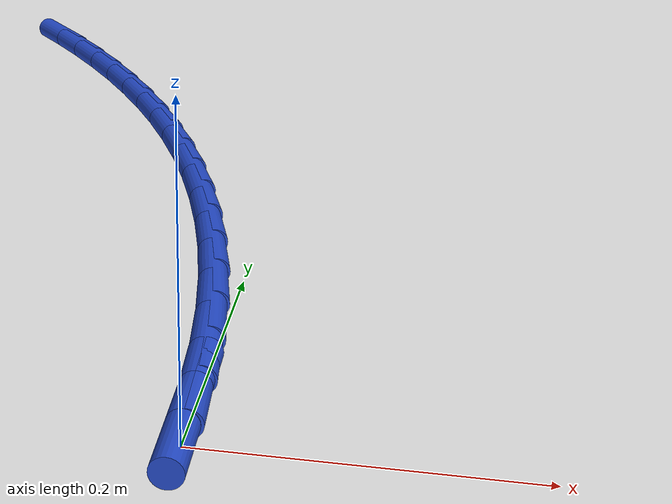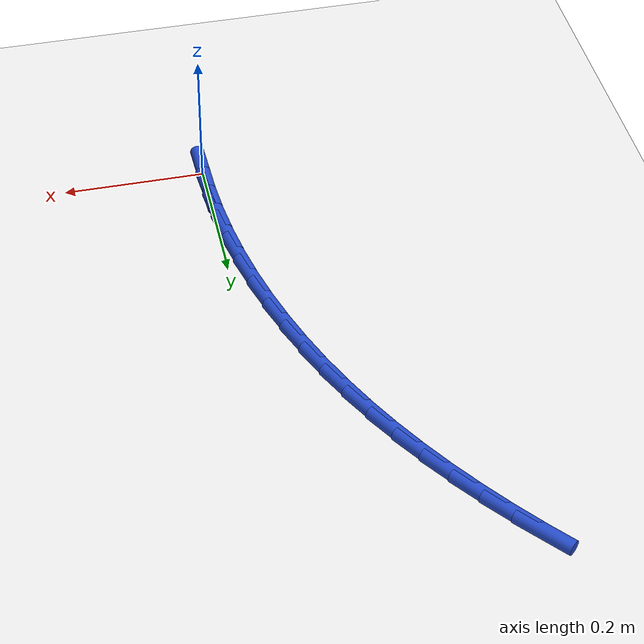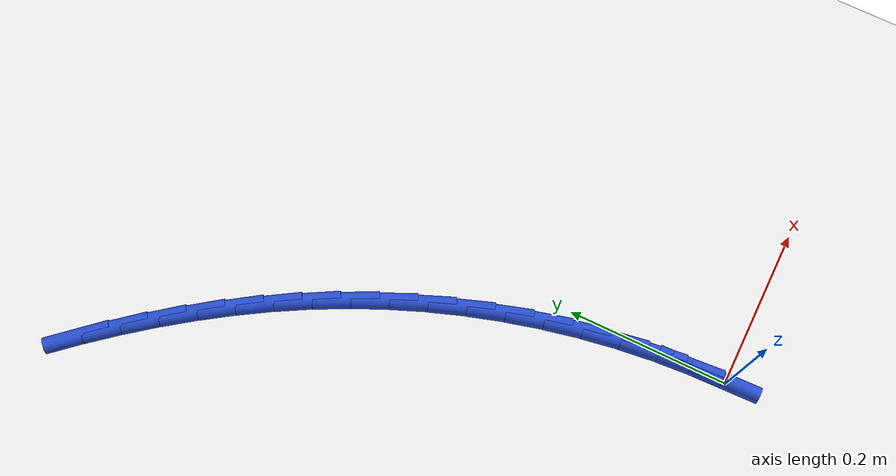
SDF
<sdf version="1.6">
 <world name="default">
  <model name="ground_plane">
   <static>1</static>
   <link name="link">
    <collision name="collision">
     <geometry><plane><normal>0 0 1</normal><size>100 100</size></plane></geometry>
     <surface><friction><ode><mu>100</mu><mu2>50</mu2></ode></friction></surface>
    </collision>
    <visual name="visual">
     <cast_shadows>0</cast_shadows>
     <geometry><plane><normal>0 0 1</normal><size>100 100</size></plane></geometry>
     <material>
      <script><uri>file://media/materials/scripts/gazebo.material</uri><name>Gazebo/WhiteGlow</name></script>
     </material>
    </visual>
   </link>
  </model>
  <model name="line">
   <link name="link_1">
    <pose>-0.0012918215380092201 0.04641076852433082 0.01 0 1.57 -1.4957556351680719</pose>
    <collision name="collision">
     <geometry><cylinder><radius>0.01</radius><length>0.08</length></cylinder></geometry>
    </collision>
    <visual name="visual">
     <material>
      <script><name>Gazebo/Blue</name><uri>file://media/materials/scripts/gazebo.material</uri></script>
     </material>
     <geometry><cylinder><radius>0.01</radius><length>0.08</length></cylinder></geometry>
    </visual>
   </link>
   <link name="link_2">
    <pose>-0.004776711012445879 0.09276356301618625 0.01 0 1.57 -1.449606159220448</pose>
    <collision name="collision">
     <geometry><cylinder><radius>0.01</radius><length>0.08</length></cylinder></geometry>
    </collision>
    <visual name="visual">
     <material>
      <script><name>Gazebo/Blue</name><uri>file://media/materials/scripts/gazebo.material</uri></script>
     </material>
     <geometry><cylinder><radius>0.01</radius><length>0.08</length></cylinder></geometry>
    </visual>
   </link>
   <link name="link_3">
    <pose>-0.010400524770756297 0.13894102485700363 0.01 0 1.57 -1.404351630841077</pose>
    <collision name="collision">
     <geometry><cylinder><radius>0.01</radius><length>0.08</length></cylinder></geometry>
    </collision>
    <visual name="visual">
     <material>
      <script><name>Gazebo/Blue</name><uri>file://media/materials/scripts/gazebo.material</uri></script>
     </material>
     <geometry><cylinder><radius>0.01</radius><length>0.08</length></cylinder></geometry>
    </visual>
   </link>
   <link name="link_4">
    <pose>-0.018109119160386777 0.18482579542822042 0.01 0 1.57 -1.3598155134194914</pose>
    <collision name="collision">
     <geometry><cylinder><radius>0.01</radius><length>0.08</length></cylinder></geometry>
    </collision>
    <visual name="visual">
     <material>
      <script><name>Gazebo/Blue</name><uri>file://media/materials/scripts/gazebo.material</uri></script>
     </material>
     <geometry><cylinder><radius>0.01</radius><length>0.08</length></cylinder></geometry>
    </visual>
   </link>
   <link name="link_5">
    <pose>-0.0278483505287836 0.23030051611127378 0.01 0 1.57 -1.3158151938457348</pose>
    <collision name="collision">
     <geometry><cylinder><radius>0.01</radius><length>0.08</length></cylinder></geometry>
    </collision>
    <visual name="visual">
     <material>
      <script><name>Gazebo/Blue</name><uri>file://media/materials/scripts/gazebo.material</uri></script>
     </material>
     <geometry><cylinder><radius>0.01</radius><length>0.08</length></cylinder></geometry>
    </visual>
   </link>
   <link name="link_6">
    <pose>-0.039564075223393086 0.2752478282876013 0.01 0 1.57 -1.2721629169399251</pose>
    <collision name="collision">
     <geometry><cylinder><radius>0.01</radius><length>0.08</length></cylinder></geometry>
    </collision>
    <visual name="visual">
     <material>
      <script><name>Gazebo/Blue</name><uri>file://media/materials/scripts/gazebo.material</uri></script>
     </material>
     <geometry><cylinder><radius>0.01</radius><length>0.08</length></cylinder></geometry>
    </visual>
   </link>
   <link name="link_7">
    <pose>-0.053202149591661516 0.31955037333864017 0.01 0 1.57 -1.228666249508194</pose>
    <collision name="collision">
     <geometry><cylinder><radius>0.01</radius><length>0.08</length></cylinder></geometry>
    </collision>
    <visual name="visual">
     <material>
      <script><name>Gazebo/Blue</name><uri>file://media/materials/scripts/gazebo.material</uri></script>
     </material>
     <geometry><cylinder><radius>0.01</radius><length>0.08</length></cylinder></geometry>
    </visual>
   </link>
   <link name="link_8">
    <pose>-0.0687084299810352 0.3630907926458279 0.01 0 1.57 -1.1851281973826122</pose>
    <collision name="collision">
     <geometry><cylinder><radius>0.01</radius><length>0.08</length></cylinder></geometry>
    </collision>
    <visual name="visual">
     <material>
      <script><name>Gazebo/Blue</name><uri>file://media/materials/scripts/gazebo.material</uri></script>
     </material>
     <geometry><cylinder><radius>0.01</radius><length>0.08</length></cylinder></geometry>
    </visual>
   </link>
   <link name="link_9">
    <pose>-0.08602877273896042 0.40575172759060163 0.01 0 1.57 -1.1415876496653528</pose>
    <collision name="collision">
     <geometry><cylinder><radius>0.01</radius><length>0.08</length></cylinder></geometry>
    </collision>
    <visual name="visual">
     <material>
      <script><name>Gazebo/Blue</name><uri>file://media/materials/scripts/gazebo.material</uri></script>
     </material>
     <geometry><cylinder><radius>0.01</radius><length>0.08</length></cylinder></geometry>
    </visual>
   </link>
   <link name="link_10">
    <pose>-0.10510783155418714 0.4474396803785444 0.01 0 1.57 -1.0990227829262018</pose>
    <collision name="collision">
     <geometry><cylinder><radius>0.01</radius><length>0.08</length></cylinder></geometry>
    </collision>
    <visual name="visual">
     <material>
      <script><name>Gazebo/Blue</name><uri>file://media/materials/scripts/gazebo.material</uri></script>
     </material>
     <geometry><cylinder><radius>0.01</radius><length>0.08</length></cylinder></geometry>
    </visual>
   </link>
   <link name="link_11">
    <pose>-0.1258851002111187 0.48816352604187824 0.01 0 1.57 -1.0578667665606885</pose>
    <collision name="collision">
     <geometry><cylinder><radius>0.01</radius><length>0.08</length></cylinder></geometry>
    </collision>
    <visual name="visual">
     <material>
      <script><name>Gazebo/Blue</name><uri>file://media/materials/scripts/gazebo.material</uri></script>
     </material>
     <geometry><cylinder><radius>0.01</radius><length>0.08</length></cylinder></geometry>
    </visual>
   </link>
   <link name="link_12">
    <pose>-0.14829868895306622 0.5279595891550759 0.01 0 1.57 -1.0182707191301958</pose>
    <collision name="collision">
     <geometry><cylinder><radius>0.01</radius><length>0.08</length></cylinder></geometry>
    </collision>
    <visual name="visual">
     <material>
      <script><name>Gazebo/Blue</name><uri>file://media/materials/scripts/gazebo.material</uri></script>
     </material>
     <geometry><cylinder><radius>0.01</radius><length>0.08</length></cylinder></geometry>
    </visual>
   </link>
   <link name="link_13">
    <pose>-0.17228670800689308 0.5668641946189341 0.01 0 1.57 -0.9803551299865266</pose>
    <collision name="collision">
     <geometry><cylinder><radius>0.01</radius><length>0.08</length></cylinder></geometry>
    </collision>
    <visual name="visual">
     <material>
      <script><name>Gazebo/Blue</name><uri>file://media/materials/scripts/gazebo.material</uri></script>
     </material>
     <geometry><cylinder><radius>0.01</radius><length>0.08</length></cylinder></geometry>
    </visual>
   </link>
   <link name="link_14">
    <pose>-0.19778726759946275 0.6049136673342501 0.01 0 1.57 -0.9442107248380446</pose>
    <collision name="collision">
     <geometry><cylinder><radius>0.01</radius><length>0.08</length></cylinder></geometry>
    </collision>
    <visual name="visual">
     <material>
      <script><name>Gazebo/Blue</name><uri>file://media/materials/scripts/gazebo.material</uri></script>
     </material>
     <geometry><cylinder><radius>0.01</radius><length>0.08</length></cylinder></geometry>
    </visual>
   </link>
   <link name="link_15">
    <pose>-0.22473847795763863 0.6421443322018212 0.01 0 1.57 -0.909900440066162</pose>
    <collision name="collision">
     <geometry><cylinder><radius>0.01</radius><length>0.08</length></cylinder></geometry>
    </collision>
    <visual name="visual">
     <material>
      <script><name>Gazebo/Blue</name><uri>file://media/materials/scripts/gazebo.material</uri></script>
     </material>
     <geometry><cylinder><radius>0.01</radius><length>0.08</length></cylinder></geometry>
    </visual>
   </link>
   <link name="link_16">
    <pose>-0.25307844930828405 0.6785925141224436 0.01 0 1.57 -0.8774621844678899</pose>
    <collision name="collision">
     <geometry><cylinder><radius>0.01</radius><length>0.08</length></cylinder></geometry>
    </collision>
    <visual name="visual">
     <material>
      <script><name>Gazebo/Blue</name><uri>file://media/materials/scripts/gazebo.material</uri></script>
     </material>
     <geometry><cylinder><radius>0.01</radius><length>0.08</length></cylinder></geometry>
    </visual>
   </link>
   <link name="link_17">
    <pose>-0.2827452918782625 0.7142945379969149 0.01 0 1.57 -0.8469120747195975</pose>
    <collision name="collision">
     <geometry><cylinder><radius>0.01</radius><length>0.08</length></cylinder></geometry>
    </collision>
    <visual name="visual">
     <material>
      <script><name>Gazebo/Blue</name><uri>file://media/materials/scripts/gazebo.material</uri></script>
     </material>
     <geometry><cylinder><radius>0.01</radius><length>0.08</length></cylinder></geometry>
    </visual>
   </link>
   <link name="link_150">
    <pose>-2.0816681711721685e-17 1.5265566588595902e-16 0.01 0 1.57 -1.5426781406548735</pose>
    <collision name="collision">
     <geometry><cylinder><radius>0.01</radius><length>0.08</length></cylinder></geometry>
    </collision>
    <visual name="visual">
     <material>
      <script><name>Gazebo/Blue</name><uri>file://media/materials/scripts/gazebo.material</uri></script>
     </material>
     <geometry><cylinder><radius>0.01</radius><length>0.08</length></cylinder></geometry>
    </visual>
   </link>
   <link name="link_151">
    <pose>-0.001305515759071188 0.04641734973300006 0.01 0 1.57 -1.542678140654874</pose>
    <collision name="collision">
     <geometry><cylinder><radius>0.01</radius><length>0.08</length></cylinder></geometry>
    </collision>
    <visual name="visual">
     <material>
      <script><name>Gazebo/Blue</name><uri>file://media/materials/scripts/gazebo.material</uri></script>
     </material>
     <geometry><cylinder><radius>0.01</radius><length>0.08</length></cylinder></geometry>
    </visual>
   </link>
  </model>
 </world>
</sdf>
